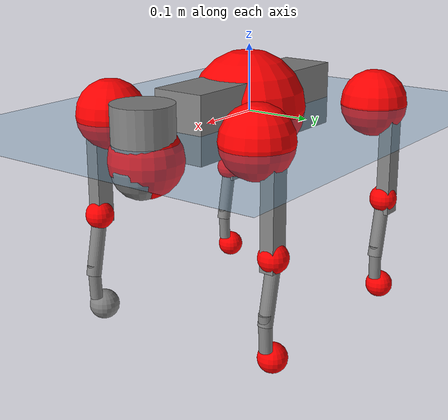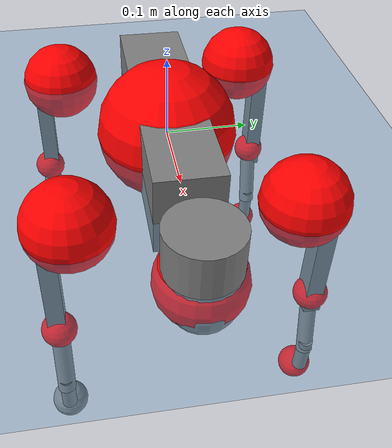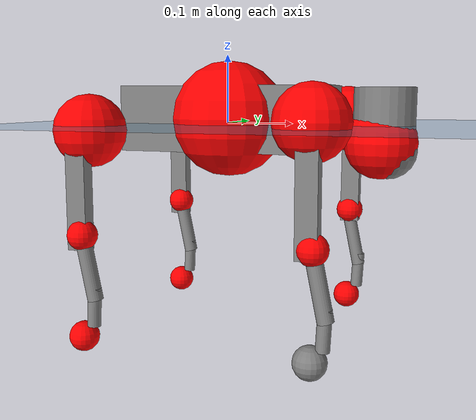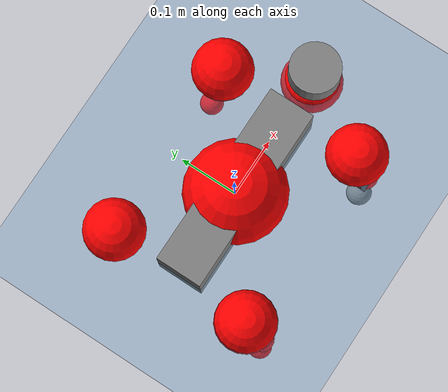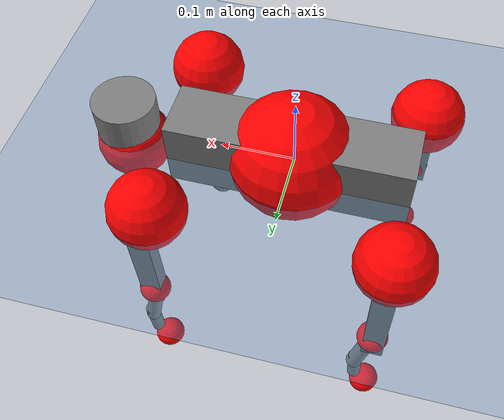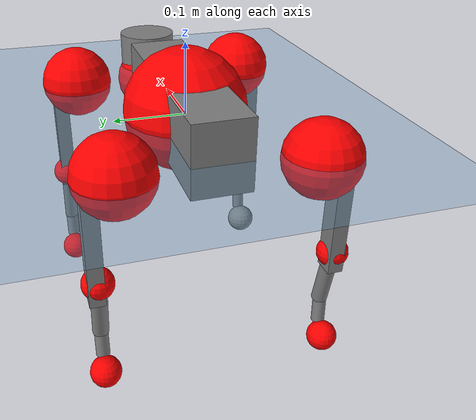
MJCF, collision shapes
<mujoco model="go2">
  <compiler angle="radian" assetdir="assets" balanceinertia="true" inertiafromgeom="false"/>

  <option timestep="0.005" density="1.2" viscosity="2e-05"/>

  <size nkey="1"/>

  <visual>
    <quality shadowsize="8192"/>
    <map shadowclip="0.5"/>
  </visual>

  <default>
    <default class="/">
      <geom contype="0" conaffinity="0" group="1" solref="-1000 -80"/>
      <site size="0.01 0.005 0.005" group="5"/>
      <general forcelimited="true" biastype="affine" gainprm="20" biasprm="0 -20 -0.5"/>
      <default class="go2">
        <joint armature="0.01" damping="0.01" frictionloss="0.2"/>
        <geom condim="1" margin="0.001"/>
        <default class="visual">
          <geom type="mesh" group="2"/>
        </default>
        <default class="collision">
          <geom group="3"/>
          <default class="foot">
            <geom size="0.022 0 0" condim="6" priority="1" friction="0.8 0.02 0.01" solimp="0.015 1 0.022"/>
          </default>
        </default>
        <default class="reward_collision_sphere">
          <geom group="5" rgba="1 0 0 1"/>
        </default>
      </default>
    </default>
  </default>

  <asset>
    <texture type="skybox" colorspace="auto" name="//unnamed_texture_0" builtin="gradient" rgb1="0.95 0.95 0.95" rgb2="0.95 0.95 0.95" width="100" height="600"/>
    <texture type="2d" colorspace="auto" name="texplane" builtin="checker" rgb1="0.345 0.575 0.748" rgb2="0.345 0.575 0.748" markrgb="1 1 1" width="512" height="512"/>
    <material name="MatPlane" class="/" texture="texplane" texuniform="true" texrepeat="2 2" specular="0.9"/>
    <material name="metal" class="/" rgba="0.9 0.95 0.95 1"/>
    <material name="black" class="/" rgba="0 0 0 1"/>
    <material name="white" class="/"/>
    <material name="gray" class="/" rgba="0.671705 0.692426 0.77427 1"/>
    <mesh name="base_0" class="/" file="base_0.obj"/>
    <mesh name="base_1" class="/" file="base_1.obj"/>
    <mesh name="base_2" class="/" file="base_2.obj"/>
    <mesh name="base_3" class="/" file="base_3.obj"/>
    <mesh name="base_4" class="/" file="base_4.obj"/>
    <mesh name="hip_0" class="/" file="hip_0.obj"/>
    <mesh name="hip_1" class="/" file="hip_1.obj"/>
    <mesh name="thigh_0" class="/" file="thigh_0.obj"/>
    <mesh name="thigh_1" class="/" file="thigh_1.obj"/>
    <mesh name="thigh_mirror_0" class="/" file="thigh_mirror_0.obj"/>
    <mesh name="thigh_mirror_1" class="/" file="thigh_mirror_1.obj"/>
    <mesh name="calf_0" class="/" file="calf_0.obj"/>
    <mesh name="calf_1" class="/" file="calf_1.obj"/>
    <mesh name="calf_mirror_0" class="/" file="calf_mirror_0.obj"/>
    <mesh name="calf_mirror_1" class="/" file="calf_mirror_1.obj"/>
    <mesh name="foot" class="/" file="foot.obj"/>
  </asset>

  <worldbody>
    <geom name="floor" class="/" size="100 100 0.125" type="plane" group="0" material="MatPlane"/>
    <light name="toplight_shadow" class="/" pos="0 0 5" dir="0.0990148 0.0990148 -0.990148" type="directional" ambient="0.04 0.04 0.04" diffuse="0.55 0.55 0.55" specular="0.12 0.12 0.12"/>
    <light name="toplight_fill" class="/" pos="0 0 5" dir="0.0990148 0.0990148 -0.990148" type="directional" castshadow="false" ambient="0.04 0.04 0.04" diffuse="0.3 0.3 0.3" specular="0.08 0.08 0.08"/>
    <body name="trunk" childclass="go2" pos="0.00229602 -0.000464959 0.00626663" quat="0.999996 -0.00235149 -0.000128837 -0.00121856">
      <inertial pos="0.0197983 -0.00360855 -0.00411059" quat="0.02407 0.713678 0.000612016 0.70006" mass="4.09448" diaginertia="0.0317309 0.126761 0.00350552"/>
      <joint name="//unnamed_joint_0" type="free" armature="0" damping="0" frictionloss="0"/>
      <geom name="//unnamed_geom_1" class="visual" material="black" mesh="base_0"/>
      <geom name="//unnamed_geom_2" class="visual" material="black" mesh="base_1"/>
      <geom name="//unnamed_geom_3" class="visual" material="black" mesh="base_2"/>
      <geom name="//unnamed_geom_4" class="visual" material="white" mesh="base_3"/>
      <geom name="//unnamed_geom_5" class="visual" material="gray" mesh="base_4"/>
      <geom name="trunk_1" class="collision" size="0.161104 0.0400406 0.0488195" type="box"/>
      <geom name="trunk_2" class="collision" size="0.0428241 0.0385417" pos="0.22888 0 0.00688263" type="cylinder"/>
      <geom name="trunk_3" class="collision" size="0.0402547" pos="0.235305 0 -0.0412958"/>
      <geom name="//unnamed_geom_9" class="reward_collision_sphere" size="0.0856483"/>
      <geom name="//unnamed_geom_10" class="reward_collision_sphere" size="0.051389" pos="0.224864 0 -0.0309718"/>
      <site name="imu" pos="-0.00895712 -0.00438822 0.0444824" size="0.00856483"/>
      <camera name="track" pos="0 -2.1562 0" quat="0.707107 0.707107 0 0" mode="trackcom"/>
      <camera name="ego_camera" pos="0.250563 0 0.0309718" quat="-0.5 -0.5 0.5 0.5"/>
      <body name="FL_hip" pos="0.155567 0.0519951 -0.00092013" quat="1 -0.000627753 0.000162361 0.000563814">
        <inertial pos="0.000452753 0.00306319 0.00618589" quat="0.478949 0.516116 0.493523 0.510556" mass="0.432377" diaginertia="0.000288652 0.000856329 7.44724e-05"/>
        <joint name="FL_hip_joint" pos="0 0 0" axis="0.999694 -0.0244211 0.00399621" stiffness="0.0142433" range="-1.04183 1.03996" armature="0.00871533" damping="0.0203592" frictionloss="0.168479"/>
        <geom name="//unnamed_geom_11" class="visual" material="metal" mesh="hip_0"/>
        <geom name="//unnamed_geom_12" class="visual" material="gray" mesh="hip_1"/>
        <geom name="//unnamed_geom_13" class="collision" size="0.0393982 0.0171297" pos="0 0.0862478 0" quat="0.707107 0.707107 0 0" type="cylinder"/>
        <geom name="//unnamed_geom_14" class="reward_collision_sphere" size="0.051389" pos="0 0.0754669 0"/>
        <body name="FL_thigh" pos="0.00343326 0.103679 -0.00458068" quat="1 1.99044e-05 0.000275003 -0.000262222">
          <inertial pos="-0.00289266 -0.023602 -0.0239955" quat="0.828386 0.0825224 -0.02738 0.553369" mass="0.782919" diaginertia="0.002153 0.00894569 0.00014906"/>
          <joint name="FL_thigh_joint" pos="0 0 0" axis="0.00333764 0.999988 -0.00357167" stiffness="0.00932633" range="-1.55818 3.47254" armature="0.00948117" damping="0" frictionloss="0.172785"/>
          <geom name="//unnamed_geom_15" class="visual" material="metal" mesh="thigh_0"/>
          <geom name="//unnamed_geom_16" class="visual" material="gray" mesh="thigh_1"/>
          <geom name="//unnamed_geom_17" class="collision" size="0.0912154 0.0104919 0.0145602" pos="0 0 -0.0733" quat="0.707107 0 0.707107 0" type="box"/>
          <body name="FL_calf" pos="-0.00116857 0.000706433 -0.147008" quat="1 -0.000199172 -6.17775e-05 -0.000156663">
            <inertial pos="0.0123974 0.00496586 -0.0981292" quat="0.713646 0.000408956 -0.0099654 0.700436" mass="0.149207" diaginertia="0.000521834 0.00215755 8.13227e-06"/>
            <joint name="FL_calf_joint" pos="0 0 0" axis="-0.00255872 0.999995 -0.00184985" stiffness="0.00769948" range="-2.58004 -0.85506" armature="0.00789832" damping="0" frictionloss="0.114408"/>
            <geom name="//unnamed_geom_18" class="visual" material="gray" mesh="calf_0"/>
            <geom name="//unnamed_geom_19" class="visual" material="black" mesh="calf_1"/>
            <geom name="FL_calf0" class="collision" size="0.0102778 0.051389" pos="0.0064247 0 -0.0412958" quat="0.994493 0 -0.104807 0" type="cylinder"/>
            <geom name="//unnamed_geom_21" class="collision" size="0.00942131 0.0278357" pos="0.0160617 0 -0.101863" quat="0.999688 0 0.0249974 0" type="cylinder"/>
            <geom name="//unnamed_geom_22" class="visual" pos="0 0 -0.1466" quat="1 0 0 0" material="black" mesh="foot"/>
            <geom name="FL_foot" class="foot" size="0.0193777" pos="-0.00160617 0 -0.1466"/>
            <geom name="//unnamed_geom_24" class="reward_collision_sphere" size="0.0214121"/>
            <geom name="//unnamed_geom_25" class="reward_collision_sphere" size="0.0214121" pos="-0.00160617 0 -0.1466"/>
            <site name="FL_foot" class="foot" pos="-0.00160617 0 -0.1466" size="0.00856483"/>
          </body>
        </body>
      </body>
      <body name="FR_hip" pos="0.15636 -0.0532158 -0.000144675" quat="0.999994 -0.00134966 -0.0028998 -0.000911344">
        <inertial pos="-0.00500155 -0.00116335 -0.00055754" quat="0.507472 0.49078 0.520716 0.480066" mass="0.383441" diaginertia="0.000297732 0.000843837 7.47291e-05"/>
        <joint name="FR_hip_joint" pos="0 0 0" axis="0.999996 0.00156707 0.00251593" stiffness="0.0228313" range="-0.924904 1.0546" armature="0.0093446" damping="0.0154867" frictionloss="0.158209"/>
        <geom name="//unnamed_geom_26" class="visual" pos="0 3.39608e-09 1.45665e-07" quat="4.63268e-05 1 0 0" material="metal" mesh="hip_0"/>
        <geom name="//unnamed_geom_27" class="visual" pos="0 5.50546e-09 -3.60285e-07" quat="4.63268e-05 1 0 0" material="gray" mesh="hip_1"/>
        <geom name="//unnamed_geom_28" class="collision" size="0.0393982 0.0171297" pos="0 -0.0862478 0" quat="0.707107 0.707107 0 0" type="cylinder"/>
        <geom name="//unnamed_geom_29" class="reward_collision_sphere" size="0.051389" pos="0 -0.0754669 0"/>
        <body name="FR_thigh" pos="0.00248037 -0.101695 -0.00485197" quat="1 -2.64557e-05 2.71213e-05 -0.000229821">
          <inertial pos="-0.00237324 0.0251495 -0.0244009" quat="0.546943 -0.0266395 0.081589 0.832759" mass="0.702248" diaginertia="0.00203093 0.00893499 0.000137551"/>
          <joint name="FR_thigh_joint" pos="0 0 0" axis="0.00431242 -0.999986 0.00309281" range="-3.48716 1.58451" armature="0.00833223" damping="0.0428651" frictionloss="0.198662"/>
          <geom name="//unnamed_geom_30" class="visual" material="metal" mesh="thigh_mirror_0"/>
          <geom name="//unnamed_geom_31" class="visual" material="gray" mesh="thigh_mirror_1"/>
          <geom name="//unnamed_geom_32" class="collision" size="0.0912154 0.0104919 0.0145602" pos="0 0 -0.0733" quat="0.707107 0 0.707107 0" type="box"/>
          <body name="FR_calf" pos="0.0057934 0.0018855 -0.151485" quat="0.999999 0.000275114 -9.02125e-05 -0.00104489">
            <inertial pos="0.00299638 0.00566677 -0.100774" quat="0.680256 -0.01785 0.00236232 0.732754" mass="0.156544" diaginertia="0.000518319 0.00214309 8.88252e-06"/>
            <joint name="FR_calf_joint" pos="0 0 0" axis="0.000109077 -1 2.86552e-05" range="0.823145 2.68687" armature="0.00893134" damping="0.0189971" frictionloss="0.171068"/>
            <geom name="//unnamed_geom_33" class="visual" material="gray" mesh="calf_mirror_0"/>
            <geom name="//unnamed_geom_34" class="visual" material="black" mesh="calf_mirror_1"/>
            <geom name="FR_calf0" class="collision" size="0.0111343 0.051389" pos="0.00803087 0 -0.0412958" quat="0.995004 0 -0.0998334 0" type="cylinder"/>
            <geom name="//unnamed_geom_36" class="collision" size="0.00942131 0.0278357" pos="0.0160617 0 -0.101863" quat="0.999688 0 0.0249974 0" type="cylinder"/>
            <geom name="//unnamed_geom_37" class="visual" pos="0 0 -0.1466" quat="1 0 0 0" material="black" mesh="foot"/>
            <geom name="FR_foot" class="foot" size="0.0229093" pos="-0.00160617 0 -0.1466"/>
            <geom name="//unnamed_geom_39" class="reward_collision_sphere" size="0.0214121"/>
            <geom name="//unnamed_geom_40" class="reward_collision_sphere" size="0.0214121" pos="-0.00160617 0 -0.1466"/>
            <site name="FR_foot" class="foot" pos="-0.00160617 0 -0.1466" size="0.00856483"/>
          </body>
        </body>
      </body>
      <body name="RL_hip" pos="-0.155738 0.0518131 -0.00398546" quat="1 0.000493019 0.000336691 8.21336e-05">
        <inertial pos="0.00279271 0.00688976 0.006208" quat="0.506999 0.500721 0.493345 0.498839" mass="0.418537" diaginertia="0.000298029 0.000886562 7.765e-05"/>
        <joint name="RL_hip_joint" pos="0 0 0" axis="-0.999769 0.015391 0.0150087" stiffness="0.0113482" range="-0.960998 0.945113" armature="0.00683588" damping="0.000157308" frictionloss="0.177833"/>
        <geom name="//unnamed_geom_41" class="visual" pos="-1.0003e-09 0 -1.96083e-07" quat="4.63268e-05 0 1 0" material="metal" mesh="hip_0"/>
        <geom name="//unnamed_geom_42" class="visual" pos="-1.62161e-09 0 -1.73897e-07" quat="4.63268e-05 0 1 0" material="gray" mesh="hip_1"/>
        <geom name="//unnamed_geom_43" class="collision" size="0.0393982 0.0171297" pos="0 0.0862478 0" quat="0.707107 0.707107 0 0" type="cylinder"/>
        <geom name="//unnamed_geom_44" class="reward_collision_sphere" size="0.051389" pos="0 0.0754669 0"/>
        <body name="RL_thigh" pos="0.00311258 0.106945 -0.00732618" quat="0.999999 0.000659249 -0.000882454 0.000544736">
          <inertial pos="-0.00995753 -0.0215258 -0.0157027" quat="0.829477 0.0838456 -0.0197217 0.55186" mass="0.644465" diaginertia="0.00168206 0.00794113 0.000120016"/>
          <joint name="RL_thigh_joint" pos="0 0 0" axis="0.0381205 0.999249 0.00693027" range="-0.493337 4.56085" armature="0.00876381" damping="0.0436278" frictionloss="0.174622"/>
          <geom name="//unnamed_geom_45" class="visual" material="metal" mesh="thigh_0"/>
          <geom name="//unnamed_geom_46" class="visual" material="gray" mesh="thigh_1"/>
          <geom name="//unnamed_geom_47" class="collision" size="0.0912154 0.0104919 0.0145602" pos="0 0 -0.0733" quat="0.707107 0 0.707107 0" type="box"/>
          <body name="RL_calf" pos="0.00260049 -0.00389793 -0.141726" quat="0.999999 -0.001438 -0.000602354 -0.000137185">
            <inertial pos="0.010985 -0.00267472 -0.09074" quat="0.703623 0.0201226 -0.0169871 0.710086" mass="0.158786" diaginertia="0.000507192 0.00219712 8.50446e-06"/>
            <joint name="RL_calf_joint" pos="0 0 0" axis="0.0102369 0.9999 0.00980028" range="-2.67995 -0.690657" armature="0.00642291" damping="0.0387351" frictionloss="0.177665"/>
            <geom name="//unnamed_geom_48" class="visual" material="gray" mesh="calf_0"/>
            <geom name="//unnamed_geom_49" class="visual" material="black" mesh="calf_1"/>
            <geom name="RL_calf0" class="collision" size="0.0111343 0.051389" pos="0.00803087 0 -0.0412958" quat="0.995004 0 -0.0998334 0" type="cylinder"/>
            <geom name="//unnamed_geom_51" class="collision" size="0.00942131 0.0278357" pos="0.0160617 0 -0.101863" quat="0.999688 0 0.0249974 0" type="cylinder"/>
            <geom name="//unnamed_geom_52" class="visual" pos="0 0 -0.1466" quat="1 0 0 0" material="black" mesh="foot"/>
            <geom name="RL_foot" class="foot" size="0.0200526" pos="-0.00160617 0 -0.1466"/>
            <geom name="//unnamed_geom_54" class="reward_collision_sphere" size="0.0214121"/>
            <geom name="//unnamed_geom_55" class="reward_collision_sphere" size="0.0214121" pos="-0.00160617 0 -0.1466"/>
            <site name="RL_foot" class="foot" pos="-0.00160617 0 -0.1466" size="0.00856483"/>
          </body>
        </body>
      </body>
      <body name="RR_hip" pos="-0.162459 -0.0508358 -0.0152155" quat="1 3.49348e-05 -0.0006849 0.000174007">
        <inertial pos="0.00773596 -0.000819084 -0.00067771" quat="0.494498 0.485411 0.519488 0.499981" mass="0.42911" diaginertia="0.000253138 0.000806418 6.80012e-05"/>
        <joint name="RR_hip_joint" pos="0 0 0" axis="-0.999338 0.0238239 -0.0274822" stiffness="0.00256455" range="-1.052 1.04449" armature="0.00874773" damping="0.0061095" frictionloss="0.110532"/>
        <geom name="//unnamed_geom_56" class="visual" pos="1.00983e-09 3.39608e-09 -3.41748e-07" quat="2.14617e-09 4.63268e-05 4.63268e-05 -1" material="metal" mesh="hip_0"/>
        <geom name="//unnamed_geom_57" class="visual" pos="1.59806e-09 5.50546e-09 1.86388e-07" quat="2.14617e-09 4.63268e-05 4.63268e-05 -1" material="gray" mesh="hip_1"/>
        <geom name="//unnamed_geom_58" class="collision" size="0.0393982 0.0171297" pos="0 -0.0862478 0" quat="0.707107 0.707107 0 0" type="cylinder"/>
        <geom name="//unnamed_geom_59" class="reward_collision_sphere" size="0.051389" pos="0 -0.0754669 0"/>
        <body name="RR_thigh" pos="-0.00346948 -0.102935 -0.000570055" quat="0.999998 -0.000282871 0.00124659 -0.00119171">
          <inertial pos="-0.00410678 0.0241723 -0.0164531" quat="0.551132 -0.0189442 0.0764572 0.830692" mass="0.769466" diaginertia="0.00184612 0.00833653 0.000136504"/>
          <joint name="RR_thigh_joint" pos="0 0 0" axis="-0.00413539 -0.999989 -0.00224244" stiffness="0.00813601" range="-4.54693 0.582864" armature="0.00845471" damping="0" frictionloss="0.154473"/>
          <geom name="//unnamed_geom_60" class="visual" material="metal" mesh="thigh_mirror_0"/>
          <geom name="//unnamed_geom_61" class="visual" material="gray" mesh="thigh_mirror_1"/>
          <geom name="//unnamed_geom_62" class="collision" size="0.0912154 0.0104919 0.0145602" pos="0 0 -0.0733" quat="0.707107 0 0.707107 0" type="box"/>
          <body name="RR_calf" pos="0.00503332 -0.00352396 -0.143534" quat="0.999993 0.00184633 0.000341341 -0.0031747">
            <inertial pos="0.00635873 0.00163754 -0.098334" quat="0.686152 0.000557859 0.00658754 0.727428" mass="0.145215" diaginertia="0.000476366 0.00209327 8.63527e-06"/>
            <joint name="RR_calf_joint" pos="0 0 0" axis="-0.0285088 -0.999456 -0.0165745" stiffness="0.0265272" range="0.752572 2.68013" armature="0.00845522" damping="0.0323575" frictionloss="0.154882"/>
            <geom name="//unnamed_geom_63" class="visual" material="gray" mesh="calf_mirror_0"/>
            <geom name="//unnamed_geom_64" class="visual" material="black" mesh="calf_mirror_1"/>
            <geom name="RR_calf0" class="collision" size="0.0111343 0.051389" pos="0.00803087 0 -0.0412958" quat="0.995004 0 -0.0998334 0" type="cylinder"/>
            <geom name="//unnamed_geom_66" class="collision" size="0.00942131 0.0278357" pos="0.0160617 0 -0.101863" quat="0.999688 0 0.0249974 0" type="cylinder"/>
            <geom name="//unnamed_geom_67" class="visual" pos="0 0 -0.1466" quat="1 0 0 0" material="black" mesh="foot"/>
            <geom name="RR_foot" class="foot" size="0.0182156" pos="-0.00160617 0 -0.1466"/>
            <geom name="//unnamed_geom_69" class="reward_collision_sphere" size="0.0214121"/>
            <geom name="//unnamed_geom_70" class="reward_collision_sphere" size="0.0214121" pos="-0.00160617 0 -0.1466"/>
            <site name="RR_foot" class="foot" pos="-0.00160617 0 -0.1466" size="0.00856483"/>
          </body>
        </body>
      </body>
    </body>
  </worldbody>

  <contact>
    <pair class="/" geom1="floor" geom2="FL_foot" name="//unnamed_contact_0"/>
    <pair class="/" geom1="floor" geom2="FR_foot" name="//unnamed_contact_1"/>
    <pair class="/" geom1="floor" geom2="RL_foot" name="//unnamed_contact_2"/>
    <pair class="/" geom1="floor" geom2="RR_foot" name="//unnamed_contact_3"/>
  </contact>

  <actuator>
    <general name="FL_hip" class="/" joint="FL_hip_joint" forcerange="-19.6294 19.6294" gainprm="18.2005" biasprm="0 -18.2005 -0.405994"/>
    <general name="FL_thigh" class="/" joint="FL_thigh_joint" forcerange="-22.0631 22.0631" gainprm="18.2005" biasprm="0 -18.2005 -0.405994"/>
    <general name="FL_calf" class="/" joint="FL_calf_joint" forcerange="-37.9375 37.9375" gainprm="18.2005" biasprm="0 -18.2005 -0.405994"/>
    <general name="FR_hip" class="/" joint="FR_hip_joint" forcerange="-18.4203 18.4203" gainprm="18.2005" biasprm="0 -18.2005 -0.405994"/>
    <general name="FR_thigh" class="/" joint="FR_thigh_joint" forcerange="-19.9238 19.9238" gainprm="18.2005" biasprm="0 -18.2005 -0.405994"/>
    <general name="FR_calf" class="/" joint="FR_calf_joint" forcerange="-39.6057 39.6057" gainprm="18.2005" biasprm="0 -18.2005 -0.405994"/>
    <general name="RL_hip" class="/" joint="RL_hip_joint" forcerange="-20.0831 20.0831" gainprm="18.2005" biasprm="0 -18.2005 -0.405994"/>
    <general name="RL_thigh" class="/" joint="RL_thigh_joint" forcerange="-24.9784 24.9784" gainprm="18.2005" biasprm="0 -18.2005 -0.405994"/>
    <general name="RL_calf" class="/" joint="RL_calf_joint" forcerange="-31.9866 31.9866" gainprm="18.2005" biasprm="0 -18.2005 -0.405994"/>
    <general name="RR_hip" class="/" joint="RR_hip_joint" forcerange="-20.1973 20.1973" gainprm="18.2005" biasprm="0 -18.2005 -0.405994"/>
    <general name="RR_thigh" class="/" joint="RR_thigh_joint" forcerange="-19.2844 19.2844" gainprm="18.2005" biasprm="0 -18.2005 -0.405994"/>
    <general name="RR_calf" class="/" joint="RR_calf_joint" forcerange="-37.4262 37.4262" gainprm="18.2005" biasprm="0 -18.2005 -0.405994"/>
  </actuator>

  <sensor>
    <gyro site="imu" name="imu_angular_velocity"/>
    <velocimeter site="imu" name="imu_linear_velocity"/>
    <framelinvel objtype="site" objname="FL_foot" name="FL_foot_global_linear_velocity"/>
    <framelinvel objtype="site" objname="FR_foot" name="FR_foot_global_linear_velocity"/>
    <framelinvel objtype="site" objname="RL_foot" name="RL_foot_global_linear_velocity"/>
    <framelinvel objtype="site" objname="RR_foot" name="RR_foot_global_linear_velocity"/>
  </sensor>

  <keyframe>
    <key name="home" qpos="0 0 0.325 1 0 0 0 0.1 0.8 -1.5 -0.1 -0.8 1.5 -0.1 0.8 -1.5 0.1 -0.8 1.5"/>
  </keyframe>
</mujoco>
